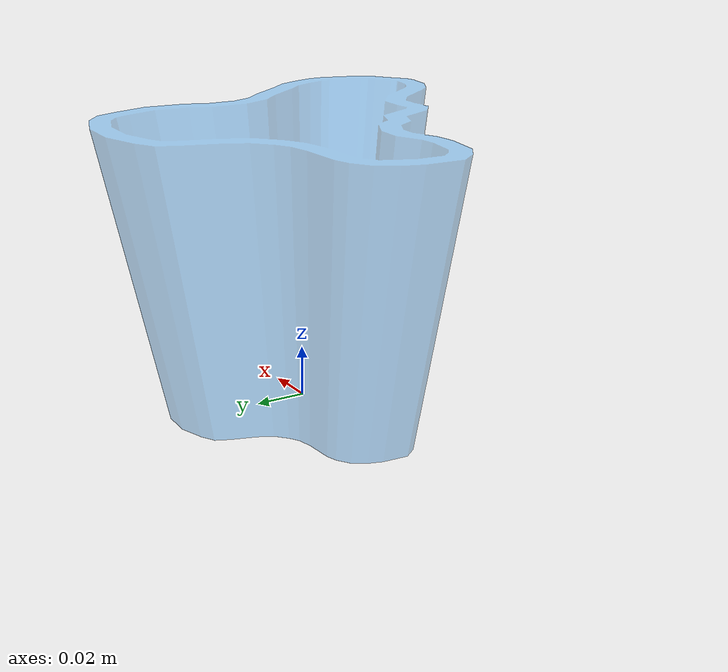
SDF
<?xml version='1.0'?>
<sdf version='1.6'>
  <model name='vase_glass'>
    <link name='link_32'>
      <pose frame=''>-0.22993 0.023263 0 0 -0 0</pose>
         <visual name='visual'>
        <pose frame=''>0 0 0 0 -0 0</pose>
        <geometry>
          <mesh>
            <uri>model://vase_glass/meshes/vase4.dae</uri>
            <scale>1 1 1</scale>
          </mesh>
        </geometry>
        <material>
          <lighting>1</lighting>
          <ambient>0.16 0.607 0.984 1</ambient>
          <diffuse>0.16 0.607 0.984 1</diffuse>
          <specular>0.01 0.01 0.01 1</specular>
          <emissive>0 0 0 1</emissive>
          <shader type='vertex'>
            <normal_map>__default__</normal_map>
          </shader>
        </material>
        <cast_shadows>1</cast_shadows>
        <transparency>0.6</transparency>
      </visual>
      <collision name='collision'>
        <laser_retro>0</laser_retro>
        <max_contacts>10</max_contacts>
        <pose frame=''>0 0 0 0 -0 0</pose>
        <geometry>
          <mesh>
            <uri>model://vase_glass/meshes/vase4.dae</uri>
            <scale>1 1 1</scale>
          </mesh>
        </geometry>
      </collision>
    </link>
    <static>1</static>
    <allow_auto_disable>1</allow_auto_disable>
  </model>
</sdf>
